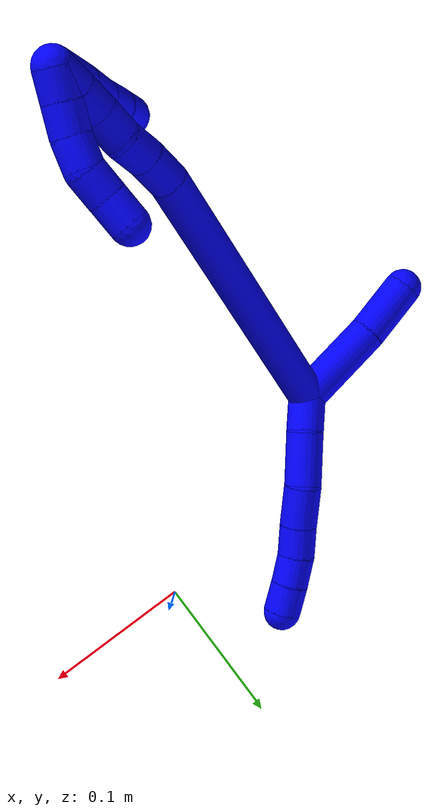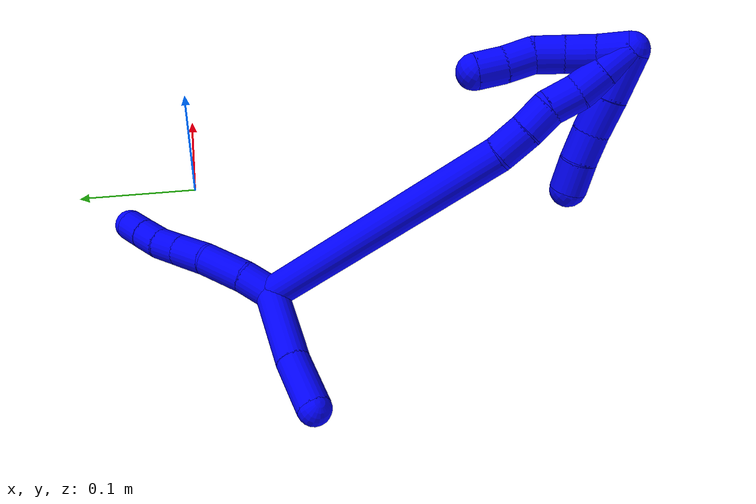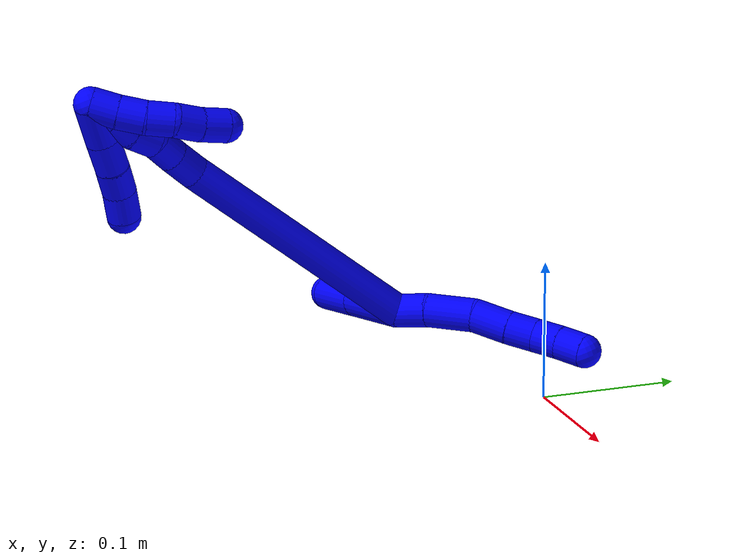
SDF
<sdf version="1.7">
 <world name="default">
  <plugin name="TubeGeneratorPlugin" filename="libtube_generator_plugin.so"/>
  <model name="photoneo_s_sensor">
   <static>1</static>
   <pose>0 0 2 1.57079 1.57079 3.14159</pose>
   <link name="link">
    <inertial><mass>0.1</mass></inertial>
    <sensor name="sensor" type="depth">
     <update_rate>30</update_rate>
     <camera>
      <horizontal_fov>1.22</horizontal_fov>
      <image><width>1920</width><height>1200</height><format>B8G8R8</format></image>
      <clip><near>0.1</near><far>4</far></clip>
      <depth_camera><output>points</output></depth_camera>
     </camera>
     <plugin name="camera_plugin" filename="libgazebo_ros_depth_camera.so">
      <baseline>0.2</baseline>
      <alwaysOn>1</alwaysOn>
      <updateRate>0.0</updateRate>
      <cameraName>camera_ir</cameraName>
      <imageTopicName>/camera/color/image_raw</imageTopicName>
      <cameraInfoTopicName>/camera/color/camera_info</cameraInfoTopicName>
      <depthImageTopicName>/camera/depth/image_raw</depthImageTopicName>
      <depthImageCameraInfoTopicName>/camera/depth/camera_info</depthImageCameraInfoTopicName>
      <pointCloudTopicName>/camera/depth/points</pointCloudTopicName>
      <frameName>fr_optical</frameName>
      <pointCloudCutoff>0.1</pointCloudCutoff>
      <pointCloudCutoffMax>2.0</pointCloudCutoffMax>
      <distortionK1>0</distortionK1>
      <distortionK2>0</distortionK2>
      <distortionK3>0</distortionK3>
      <distortionT1>0</distortionT1>
      <distortionT2>0</distortionT2>
      <CxPrime>0</CxPrime>
      <Cx>0</Cx>
      <Cy>0</Cy>
      <focalLength>0</focalLength>
      <hackBaseline>0</hackBaseline>
     </plugin>
    </sensor>
   </link>
  </model>
  <gravity>0 0 -9.8</gravity>
  <magnetic_field>6e-06 2.3e-05 -4.2e-05</magnetic_field>
  <atmosphere type="adiabatic"/>
  <physics name="default_physics" default="0" type="ode">
   <max_step_size>0.003</max_step_size>
   <real_time_factor>1</real_time_factor>
   <real_time_update_rate>1000</real_time_update_rate>
   <max_contacts>10000</max_contacts>
   <ode>
    <solver>
     <type>quick</type>
     <iters>100</iters>
     <sor>1.3</sor>
     <use_dynamic_moi_rescaling>0</use_dynamic_moi_rescaling>
    </solver>
    <constraints>
     <contact_max_correcting_vel>0</contact_max_correcting_vel>
     <contact_surface_layer>0.001</contact_surface_layer>
     <cfm>0</cfm>
     <erp>0.2</erp>
    </constraints>
   </ode>
  </physics>
  <scene><ambient>0.4 0.4 0.4 1</ambient><background>0.7 0.7 0.7 1</background><shadows>0</shadows></scene>
  <audio><device>default</device></audio>
  <spherical_coordinates>
   <surface_model>EARTH_WGS84</surface_model>
   <latitude_deg>0</latitude_deg>
   <longitude_deg>0</longitude_deg>
   <elevation>0</elevation>
   <heading_deg>0</heading_deg>
  </spherical_coordinates>
  <model name="bin">
   <static>1</static>
   <link name="bottom">
    <collision name="collision-bottom">
     <pose>0 0 -0.01 0 -0 0</pose>
     <geometry><box><size>0.8 0.6 0.02</size></box></geometry>
     <surface>
      <friction><ode><mu>100</mu><mu2>100</mu2></ode></friction>
      <contact><collide_bitmask>65535</collide_bitmask></contact>
     </surface>
    </collision>
   </link>
   <link name="west_wall">
    <collision name="collision-west_wall">
     <pose>-0.41 0 0.1 0 -0 0</pose>
     <geometry><box><size>0.02 0.6 0.2</size></box></geometry>
     <surface>
      <friction><ode><mu>100</mu><mu2>100</mu2></ode></friction>
      <contact><collide_bitmask>65535</collide_bitmask></contact>
     </surface>
    </collision>
   </link>
   <link name="east_wall">
    <collision name="collision-east_wall">
     <pose>0.41 0 0.1 0 -0 0</pose>
     <geometry><box><size>0.02 0.6 0.2</size></box></geometry>
     <surface>
      <friction><ode><mu>100</mu><mu2>100</mu2></ode></friction>
      <contact><collide_bitmask>65535</collide_bitmask></contact>
     </surface>
    </collision>
   </link>
   <link name="south_wall">
    <collision name="collision-south_wall">
     <pose>0 -0.31 0.1 0 -0 0</pose>
     <geometry><box><size>0.8 0.02 0.2</size></box></geometry>
     <surface>
      <friction><ode><mu>100</mu><mu2>100</mu2></ode></friction>
      <contact><collide_bitmask>65535</collide_bitmask></contact>
     </surface>
    </collision>
   </link>
   <link name="north_wall">
    <collision name="collision-north_wall">
     <pose>0 0.31 0.1 0 -0 0</pose>
     <geometry><box><size>0.8 0.02 0.2</size></box></geometry>
     <surface>
      <friction><ode><mu>100</mu><mu2>100</mu2></ode></friction>
      <contact><collide_bitmask>65535</collide_bitmask></contact>
     </surface>
    </collision>
   </link>
  </model>
  <model name="1">
   <static>0</static>
   <link name="1">
    <collision name="collision-cylinder-e_1_2_8">
     <pose>0.008653 0.008261 -0.003567 -1.97846 0.765827 -1.09941</pose>
     <geometry><cylinder><radius>0.0125</radius><length>0.024967</length></cylinder></geometry>
     <surface>
      <friction><ode><mu>1.16</mu><mu2>1.16</mu2><slip1>0</slip1><slip2>0</slip2></ode></friction>
      <contact><ode><kp>1e+06</kp><kd>1</kd><max_vel>0</max_vel><min_depth>0.001</min_depth></ode></contact>
     </surface>
    </collision>
    <visual name="visual-cylinder-e_1_2_8">
     <pose>0.008653 0.008261 -0.003567 -1.97846 0.765827 -1.09941</pose>
     <geometry><cylinder><radius>0.0125</radius><length>0.024967</length></cylinder></geometry>
     <material><ambient>0 0 1 1</ambient></material>
    </visual>
    <collision name="collision-cylinder-e_2_8_9">
     <pose>0.028758 0.028237 -0.014614 -2.13896 0.689197 -1.15969</pose>
     <geometry><cylinder><radius>0.0125</radius><length>0.036019</length></cylinder></geometry>
     <surface>
      <friction><ode><mu>1.16</mu><mu2>1.16</mu2><slip1>0</slip1><slip2>0</slip2></ode></friction>
      <contact><ode><kp>1e+06</kp><kd>1</kd><max_vel>0</max_vel><min_depth>0.001</min_depth></ode></contact>
     </surface>
    </collision>
    <visual name="visual-cylinder-e_2_8_9">
     <pose>0.028758 0.028237 -0.014614 -2.13896 0.689197 -1.15969</pose>
     <geometry><cylinder><radius>0.0125</radius><length>0.036019</length></cylinder></geometry>
     <material><ambient>0 0 1 1</ambient></material>
    </visual>
    <collision name="collision-cylinder-e_3_9_10">
     <pose>0.048503 0.047382 -0.030425 -2.41333 0.638895 -1.42958</pose>
     <geometry><cylinder><radius>0.0125</radius><length>0.027815</length></cylinder></geometry>
     <surface>
      <friction><ode><mu>1.16</mu><mu2>1.16</mu2><slip1>0</slip1><slip2>0</slip2></ode></friction>
      <contact><ode><kp>1e+06</kp><kd>1</kd><max_vel>0</max_vel><min_depth>0.001</min_depth></ode></contact>
     </surface>
    </collision>
    <visual name="visual-cylinder-e_3_9_10">
     <pose>0.048503 0.047382 -0.030425 -2.41333 0.638895 -1.42958</pose>
     <geometry><cylinder><radius>0.0125</radius><length>0.027815</length></cylinder></geometry>
     <material><ambient>0 0 1 1</ambient></material>
    </visual>
    <collision name="collision-cylinder-e_4_10_11">
     <pose>0.063044 0.060908 -0.044647 -2.33907 0.63516 -1.31829</pose>
     <geometry><cylinder><radius>0.0125</radius><length>0.02106</length></cylinder></geometry>
     <surface>
      <friction><ode><mu>1.16</mu><mu2>1.16</mu2><slip1>0</slip1><slip2>0</slip2></ode></friction>
      <contact><ode><kp>1e+06</kp><kd>1</kd><max_vel>0</max_vel><min_depth>0.001</min_depth></ode></contact>
     </surface>
    </collision>
    <visual name="visual-cylinder-e_4_10_11">
     <pose>0.063044 0.060908 -0.044647 -2.33907 0.63516 -1.31829</pose>
     <geometry><cylinder><radius>0.0125</radius><length>0.02106</length></cylinder></geometry>
     <material><ambient>0 0 1 1</ambient></material>
    </visual>
    <collision name="collision-cylinder-e_5_11_12">
     <pose>0.076422 0.071852 -0.055638 -2.38162 0.792005 -1.61651</pose>
     <geometry><cylinder><radius>0.0125</radius><length>0.020037</length></cylinder></geometry>
     <surface>
      <friction><ode><mu>1.16</mu><mu2>1.16</mu2><slip1>0</slip1><slip2>0</slip2></ode></friction>
      <contact><ode><kp>1e+06</kp><kd>1</kd><max_vel>0</max_vel><min_depth>0.001</min_depth></ode></contact>
     </surface>
    </collision>
    <visual name="visual-cylinder-e_5_11_12">
     <pose>0.076422 0.071852 -0.055638 -2.38162 0.792005 -1.61651</pose>
     <geometry><cylinder><radius>0.0125</radius><length>0.020037</length></cylinder></geometry>
     <material><ambient>0 0 1 1</ambient></material>
    </visual>
    <collision name="collision-cylinder-e_6_12_6">
     <pose>0.090808 0.081118 -0.066113 -2.45348 0.806332 -1.74421</pose>
     <geometry><cylinder><radius>0.0125</radius><length>0.020103</length></cylinder></geometry>
     <surface>
      <friction><ode><mu>1.16</mu><mu2>1.16</mu2><slip1>0</slip1><slip2>0</slip2></ode></friction>
      <contact><ode><kp>1e+06</kp><kd>1</kd><max_vel>0</max_vel><min_depth>0.001</min_depth></ode></contact>
     </surface>
    </collision>
    <visual name="visual-cylinder-e_6_12_6">
     <pose>0.090808 0.081118 -0.066113 -2.45348 0.806332 -1.74421</pose>
     <geometry><cylinder><radius>0.0125</radius><length>0.020103</length></cylinder></geometry>
     <material><ambient>0 0 1 1</ambient></material>
    </visual>
    <collision name="collision-cylinder-e_1_2_13">
     <pose>-0.029335 -0.001528 0.005949 0.251453 -1.36441 -0.204624</pose>
     <geometry><cylinder><radius>0.0125</radius><length>0.059941</length></cylinder></geometry>
     <surface>
      <friction><ode><mu>1.16</mu><mu2>1.16</mu2><slip1>0</slip1><slip2>0</slip2></ode></friction>
      <contact><ode><kp>1e+06</kp><kd>1</kd><max_vel>0</max_vel><min_depth>0.001</min_depth></ode></contact>
     </surface>
    </collision>
    <visual name="visual-cylinder-e_1_2_13">
     <pose>-0.029335 -0.001528 0.005949 0.251453 -1.36441 -0.204624</pose>
     <geometry><cylinder><radius>0.0125</radius><length>0.059941</length></cylinder></geometry>
     <material><ambient>0 0 1 1</ambient></material>
    </visual>
    <collision name="collision-cylinder-e_2_13_5">
     <pose>-0.077862 -0.005719 0.016968 0.48358 -1.2808 -0.363484</pose>
     <geometry><cylinder><radius>0.0125</radius><length>0.040059</length></cylinder></geometry>
     <surface>
      <friction><ode><mu>1.16</mu><mu2>1.16</mu2><slip1>0</slip1><slip2>0</slip2></ode></friction>
      <contact><ode><kp>1e+06</kp><kd>1</kd><max_vel>0</max_vel><min_depth>0.001</min_depth></ode></contact>
     </surface>
    </collision>
    <visual name="visual-cylinder-e_2_13_5">
     <pose>-0.077862 -0.005719 0.016968 0.48358 -1.2808 -0.363484</pose>
     <geometry><cylinder><radius>0.0125</radius><length>0.040059</length></cylinder></geometry>
     <material><ambient>0 0 1 1</ambient></material>
    </visual>
    <collision name="collision-cylinder-e_1_2_14">
     <pose>0.012621 -0.057796 0.077837 0.638701 0.129457 0.042861</pose>
     <geometry><cylinder><radius>0.0125</radius><length>0.195534</length></cylinder></geometry>
     <surface>
      <friction><ode><mu>1.16</mu><mu2>1.16</mu2><slip1>0</slip1><slip2>0</slip2></ode></friction>
      <contact><ode><kp>1e+06</kp><kd>1</kd><max_vel>0</max_vel><min_depth>0.001</min_depth></ode></contact>
     </surface>
    </collision>
    <visual name="visual-cylinder-e_1_2_14">
     <pose>0.012621 -0.057796 0.077837 0.638701 0.129457 0.042861</pose>
     <geometry><cylinder><radius>0.0125</radius><length>0.195534</length></cylinder></geometry>
     <material><ambient>0 0 1 1</ambient></material>
    </visual>
    <collision name="collision-cylinder-e_2_14_15">
     <pose>0.028803 -0.122176 0.164558 0.637778 0.311517 0.103597</pose>
     <geometry><cylinder><radius>0.0125</radius><length>0.023231</length></cylinder></geometry>
     <surface>
      <friction><ode><mu>1.16</mu><mu2>1.16</mu2><slip1>0</slip1><slip2>0</slip2></ode></friction>
      <contact><ode><kp>1e+06</kp><kd>1</kd><max_vel>0</max_vel><min_depth>0.001</min_depth></ode></contact>
     </surface>
    </collision>
    <visual name="visual-cylinder-e_2_14_15">
     <pose>0.028803 -0.122176 0.164558 0.637778 0.311517 0.103597</pose>
     <geometry><cylinder><radius>0.0125</radius><length>0.023231</length></cylinder></geometry>
     <material><ambient>0 0 1 1</ambient></material>
    </visual>
    <collision name="collision-cylinder-e_3_15_16">
     <pose>0.036498 -0.134247 0.180883 0.635392 0.420504 0.140121</pose>
     <geometry><cylinder><radius>0.0125</radius><length>0.020259</length></cylinder></geometry>
     <surface>
      <friction><ode><mu>1.16</mu><mu2>1.16</mu2><slip1>0</slip1><slip2>0</slip2></ode></friction>
      <contact><ode><kp>1e+06</kp><kd>1</kd><max_vel>0</max_vel><min_depth>0.001</min_depth></ode></contact>
     </surface>
    </collision>
    <visual name="visual-cylinder-e_3_15_16">
     <pose>0.036498 -0.134247 0.180883 0.635392 0.420504 0.140121</pose>
     <geometry><cylinder><radius>0.0125</radius><length>0.020259</length></cylinder></geometry>
     <material><ambient>0 0 1 1</ambient></material>
    </visual>
    <collision name="collision-cylinder-e_4_16_17">
     <pose>0.042627 -0.147457 0.194753 0.876607 0.19594 0.092069</pose>
     <geometry><cylinder><radius>0.0125</radius><length>0.020485</length></cylinder></geometry>
     <surface>
      <friction><ode><mu>1.16</mu><mu2>1.16</mu2><slip1>0</slip1><slip2>0</slip2></ode></friction>
      <contact><ode><kp>1e+06</kp><kd>1</kd><max_vel>0</max_vel><min_depth>0.001</min_depth></ode></contact>
     </surface>
    </collision>
    <visual name="visual-cylinder-e_4_16_17">
     <pose>0.042627 -0.147457 0.194753 0.876607 0.19594 0.092069</pose>
     <geometry><cylinder><radius>0.0125</radius><length>0.020485</length></cylinder></geometry>
     <material><ambient>0 0 1 1</ambient></material>
    </visual>
    <collision name="collision-cylinder-e_5_17_18">
     <pose>0.04751 -0.161297 0.208664 0.685425 0.290391 0.104249</pose>
     <geometry><cylinder><radius>0.0125</radius><length>0.020178</length></cylinder></geometry>
     <surface>
      <friction><ode><mu>1.16</mu><mu2>1.16</mu2><slip1>0</slip1><slip2>0</slip2></ode></friction>
      <contact><ode><kp>1e+06</kp><kd>1</kd><max_vel>0</max_vel><min_depth>0.001</min_depth></ode></contact>
     </surface>
    </collision>
    <visual name="visual-cylinder-e_5_17_18">
     <pose>0.04751 -0.161297 0.208664 0.685425 0.290391 0.104249</pose>
     <geometry><cylinder><radius>0.0125</radius><length>0.020178</length></cylinder></geometry>
     <material><ambient>0 0 1 1</ambient></material>
    </visual>
    <collision name="collision-cylinder-e_6_18_1">
     <pose>0.053485 -0.173469 0.223697 0.675793 0.308768 0.109254</pose>
     <geometry><cylinder><radius>0.0125</radius><length>0.020312</length></cylinder></geometry>
     <surface>
      <friction><ode><mu>1.16</mu><mu2>1.16</mu2><slip1>0</slip1><slip2>0</slip2></ode></friction>
      <contact><ode><kp>1e+06</kp><kd>1</kd><max_vel>0</max_vel><min_depth>0.001</min_depth></ode></contact>
     </surface>
    </collision>
    <visual name="visual-cylinder-e_6_18_1">
     <pose>0.053485 -0.173469 0.223697 0.675793 0.308768 0.109254</pose>
     <geometry><cylinder><radius>0.0125</radius><length>0.020312</length></cylinder></geometry>
     <material><ambient>0 0 1 1</ambient></material>
    </visual>
    <collision name="collision-cylinder-e_1_1_19">
     <pose>0.059757 -0.172323 0.225079 -2.27917 0.324211 -0.683051</pose>
     <geometry><cylinder><radius>0.0125</radius><length>0.02</length></cylinder></geometry>
     <surface>
      <friction><ode><mu>1.16</mu><mu2>1.16</mu2><slip1>0</slip1><slip2>0</slip2></ode></friction>
      <contact><ode><kp>1e+06</kp><kd>1</kd><max_vel>0</max_vel><min_depth>0.001</min_depth></ode></contact>
     </surface>
    </collision>
    <visual name="visual-cylinder-e_1_1_19">
     <pose>0.059757 -0.172323 0.225079 -2.27917 0.324211 -0.683051</pose>
     <geometry><cylinder><radius>0.0125</radius><length>0.02</length></cylinder></geometry>
     <material><ambient>0 0 1 1</ambient></material>
    </visual>
    <collision name="collision-cylinder-e_2_19_20">
     <pose>0.06644 -0.157534 0.21342 -2.19716 0.357295 -0.679646</pose>
     <geometry><cylinder><radius>0.0125</radius><length>0.02</length></cylinder></geometry>
     <surface>
      <friction><ode><mu>1.16</mu><mu2>1.16</mu2><slip1>0</slip1><slip2>0</slip2></ode></friction>
      <contact><ode><kp>1e+06</kp><kd>1</kd><max_vel>0</max_vel><min_depth>0.001</min_depth></ode></contact>
     </surface>
    </collision>
    <visual name="visual-cylinder-e_2_19_20">
     <pose>0.06644 -0.157534 0.21342 -2.19716 0.357295 -0.679646</pose>
     <geometry><cylinder><radius>0.0125</radius><length>0.02</length></cylinder></geometry>
     <material><ambient>0 0 1 1</ambient></material>
    </visual>
    <collision name="collision-cylinder-e_3_20_21">
     <pose>0.072519 -0.141416 0.203389 -2.05994 0.261133 -0.430534</pose>
     <geometry><cylinder><radius>0.0125</radius><length>0.02</length></cylinder></geometry>
     <surface>
      <friction><ode><mu>1.16</mu><mu2>1.16</mu2><slip1>0</slip1><slip2>0</slip2></ode></friction>
      <contact><ode><kp>1e+06</kp><kd>1</kd><max_vel>0</max_vel><min_depth>0.001</min_depth></ode></contact>
     </surface>
    </collision>
    <visual name="visual-cylinder-e_3_20_21">
     <pose>0.072519 -0.141416 0.203389 -2.05994 0.261133 -0.430534</pose>
     <geometry><cylinder><radius>0.0125</radius><length>0.02</length></cylinder></geometry>
     <material><ambient>0 0 1 1</ambient></material>
    </visual>
    <collision name="collision-cylinder-e_4_21_22">
     <pose>0.074267 -0.124312 0.193774 -2.10522 -0.083503 0.146281</pose>
     <geometry><cylinder><radius>0.0125</radius><length>0.02</length></cylinder></geometry>
     <surface>
      <friction><ode><mu>1.16</mu><mu2>1.16</mu2><slip1>0</slip1><slip2>0</slip2></ode></friction>
      <contact><ode><kp>1e+06</kp><kd>1</kd><max_vel>0</max_vel><min_depth>0.001</min_depth></ode></contact>
     </surface>
    </collision>
    <visual name="visual-cylinder-e_4_21_22">
     <pose>0.074267 -0.124312 0.193774 -2.10522 -0.083503 0.146281</pose>
     <geometry><cylinder><radius>0.0125</radius><length>0.02</length></cylinder></geometry>
     <material><ambient>0 0 1 1</ambient></material>
    </visual>
    <collision name="collision-cylinder-e_5_22_4">
     <pose>0.073017 -0.106582 0.184695 -1.98301 -0.041587 0.063562</pose>
     <geometry><cylinder><radius>0.0125</radius><length>0.02</length></cylinder></geometry>
     <surface>
      <friction><ode><mu>1.16</mu><mu2>1.16</mu2><slip1>0</slip1><slip2>0</slip2></ode></friction>
      <contact><ode><kp>1e+06</kp><kd>1</kd><max_vel>0</max_vel><min_depth>0.001</min_depth></ode></contact>
     </surface>
    </collision>
    <visual name="visual-cylinder-e_5_22_4">
     <pose>0.073017 -0.106582 0.184695 -1.98301 -0.041587 0.063562</pose>
     <geometry><cylinder><radius>0.0125</radius><length>0.02</length></cylinder></geometry>
     <material><ambient>0 0 1 1</ambient></material>
    </visual>
    <collision name="collision-cylinder-e_1_1_23">
     <pose>0.048445 -0.177732 0.217599 -3.01126 -0.533375 2.67263</pose>
     <geometry><cylinder><radius>0.0125</radius><length>0.031967</length></cylinder></geometry>
     <surface>
      <friction><ode><mu>1.16</mu><mu2>1.16</mu2><slip1>0</slip1><slip2>0</slip2></ode></friction>
      <contact><ode><kp>1e+06</kp><kd>1</kd><max_vel>0</max_vel><min_depth>0.001</min_depth></ode></contact>
     </surface>
    </collision>
    <visual name="visual-cylinder-e_1_1_23">
     <pose>0.048445 -0.177732 0.217599 -3.01126 -0.533375 2.67263</pose>
     <geometry><cylinder><radius>0.0125</radius><length>0.031967</length></cylinder></geometry>
     <material><ambient>0 0 1 1</ambient></material>
    </visual>
    <collision name="collision-cylinder-e_2_23_24">
     <pose>0.034466 -0.174525 0.193059 -3.0121 -0.489473 2.63356</pose>
     <geometry><cylinder><radius>0.0125</radius><length>0.024894</length></cylinder></geometry>
     <surface>
      <friction><ode><mu>1.16</mu><mu2>1.16</mu2><slip1>0</slip1><slip2>0</slip2></ode></friction>
      <contact><ode><kp>1e+06</kp><kd>1</kd><max_vel>0</max_vel><min_depth>0.001</min_depth></ode></contact>
     </surface>
    </collision>
    <visual name="visual-cylinder-e_2_23_24">
     <pose>0.034466 -0.174525 0.193059 -3.0121 -0.489473 2.63356</pose>
     <geometry><cylinder><radius>0.0125</radius><length>0.024894</length></cylinder></geometry>
     <material><ambient>0 0 1 1</ambient></material>
    </visual>
    <collision name="collision-cylinder-e_3_24_25">
     <pose>0.023007 -0.172064 0.173256 -3.02509 -0.558579 2.74037</pose>
     <geometry><cylinder><radius>0.0125</radius><length>0.021158</length></cylinder></geometry>
     <surface>
      <friction><ode><mu>1.16</mu><mu2>1.16</mu2><slip1>0</slip1><slip2>0</slip2></ode></friction>
      <contact><ode><kp>1e+06</kp><kd>1</kd><max_vel>0</max_vel><min_depth>0.001</min_depth></ode></contact>
     </surface>
    </collision>
    <visual name="visual-cylinder-e_3_24_25">
     <pose>0.023007 -0.172064 0.173256 -3.02509 -0.558579 2.74037</pose>
     <geometry><cylinder><radius>0.0125</radius><length>0.021158</length></cylinder></geometry>
     <material><ambient>0 0 1 1</ambient></material>
    </visual>
    <collision name="collision-cylinder-e_4_25_3">
     <pose>0.01192 -0.171136 0.15482 3.12948 -0.522081 -3.09627</pose>
     <geometry><cylinder><radius>0.0125</radius><length>0.021981</length></cylinder></geometry>
     <surface>
      <friction><ode><mu>1.16</mu><mu2>1.16</mu2><slip1>0</slip1><slip2>0</slip2></ode></friction>
      <contact><ode><kp>1e+06</kp><kd>1</kd><max_vel>0</max_vel><min_depth>0.001</min_depth></ode></contact>
     </surface>
    </collision>
    <visual name="visual-cylinder-e_4_25_3">
     <pose>0.01192 -0.171136 0.15482 3.12948 -0.522081 -3.09627</pose>
     <geometry><cylinder><radius>0.0125</radius><length>0.021981</length></cylinder></geometry>
     <material><ambient>0 0 1 1</ambient></material>
    </visual>
    <collision name="collision-sphere-3">
     <pose>0.006439 -0.171252 0.145294 0 -0 0</pose>
     <geometry><sphere><radius>0.0125</radius></sphere></geometry>
     <surface>
      <friction><ode><mu>1.16</mu><mu2>1.16</mu2><slip1>0</slip1><slip2>0</slip2></ode></friction>
      <contact><ode><kp>1e+06</kp><kd>1</kd><max_vel>0</max_vel><min_depth>0.001</min_depth></ode></contact>
     </surface>
    </collision>
    <visual name="visual-sphere-3">
     <pose>0.006439 -0.171252 0.145294 0 -0 0</pose>
     <geometry><sphere><radius>0.0125</radius></sphere></geometry>
     <material><ambient>0 0 1 1</ambient></material>
    </visual>
    <collision name="collision-sphere-25">
     <pose>0.017401 -0.171021 0.164345 0 -0 0</pose>
     <geometry><sphere><radius>0.0125</radius></sphere></geometry>
     <surface>
      <friction><ode><mu>1.16</mu><mu2>1.16</mu2><slip1>0</slip1><slip2>0</slip2></ode></friction>
      <contact><ode><kp>1e+06</kp><kd>1</kd><max_vel>0</max_vel><min_depth>0.001</min_depth></ode></contact>
     </surface>
    </collision>
    <visual name="visual-sphere-25">
     <pose>0.017401 -0.171021 0.164345 0 -0 0</pose>
     <geometry><sphere><radius>0.0125</radius></sphere></geometry>
     <material><ambient>0 0 1 1</ambient></material>
    </visual>
    <collision name="collision-sphere-24">
     <pose>0.028614 -0.173107 0.182166 0 -0 0</pose>
     <geometry><sphere><radius>0.0125</radius></sphere></geometry>
     <surface>
      <friction><ode><mu>1.16</mu><mu2>1.16</mu2><slip1>0</slip1><slip2>0</slip2></ode></friction>
      <contact><ode><kp>1e+06</kp><kd>1</kd><max_vel>0</max_vel><min_depth>0.001</min_depth></ode></contact>
     </surface>
    </collision>
    <visual name="visual-sphere-24">
     <pose>0.028614 -0.173107 0.182166 0 -0 0</pose>
     <geometry><sphere><radius>0.0125</radius></sphere></geometry>
     <material><ambient>0 0 1 1</ambient></material>
    </visual>
    <collision name="collision-sphere-23">
     <pose>0.040318 -0.175944 0.203953 0 -0 0</pose>
     <geometry><sphere><radius>0.0125</radius></sphere></geometry>
     <surface>
      <friction><ode><mu>1.16</mu><mu2>1.16</mu2><slip1>0</slip1><slip2>0</slip2></ode></friction>
      <contact><ode><kp>1e+06</kp><kd>1</kd><max_vel>0</max_vel><min_depth>0.001</min_depth></ode></contact>
     </surface>
    </collision>
    <visual name="visual-sphere-23">
     <pose>0.040318 -0.175944 0.203953 0 -0 0</pose>
     <geometry><sphere><radius>0.0125</radius></sphere></geometry>
     <material><ambient>0 0 1 1</ambient></material>
    </visual>
    <collision name="collision-sphere-4">
     <pose>0.072601 -0.097428 0.180692 0 -0 0</pose>
     <geometry><sphere><radius>0.0125</radius></sphere></geometry>
     <surface>
      <friction><ode><mu>1.16</mu><mu2>1.16</mu2><slip1>0</slip1><slip2>0</slip2></ode></friction>
      <contact><ode><kp>1e+06</kp><kd>1</kd><max_vel>0</max_vel><min_depth>0.001</min_depth></ode></contact>
     </surface>
    </collision>
    <visual name="visual-sphere-4">
     <pose>0.072601 -0.097428 0.180692 0 -0 0</pose>
     <geometry><sphere><radius>0.0125</radius></sphere></geometry>
     <material><ambient>0 0 1 1</ambient></material>
    </visual>
    <collision name="collision-sphere-22">
     <pose>0.073433 -0.115737 0.188698 0 -0 0</pose>
     <geometry><sphere><radius>0.0125</radius></sphere></geometry>
     <surface>
      <friction><ode><mu>1.16</mu><mu2>1.16</mu2><slip1>0</slip1><slip2>0</slip2></ode></friction>
      <contact><ode><kp>1e+06</kp><kd>1</kd><max_vel>0</max_vel><min_depth>0.001</min_depth></ode></contact>
     </surface>
    </collision>
    <visual name="visual-sphere-22">
     <pose>0.073433 -0.115737 0.188698 0 -0 0</pose>
     <geometry><sphere><radius>0.0125</radius></sphere></geometry>
     <material><ambient>0 0 1 1</ambient></material>
    </visual>
    <collision name="collision-sphere-21">
     <pose>0.075101 -0.132888 0.19885 0 -0 0</pose>
     <geometry><sphere><radius>0.0125</radius></sphere></geometry>
     <surface>
      <friction><ode><mu>1.16</mu><mu2>1.16</mu2><slip1>0</slip1><slip2>0</slip2></ode></friction>
      <contact><ode><kp>1e+06</kp><kd>1</kd><max_vel>0</max_vel><min_depth>0.001</min_depth></ode></contact>
     </surface>
    </collision>
    <visual name="visual-sphere-21">
     <pose>0.075101 -0.132888 0.19885 0 -0 0</pose>
     <geometry><sphere><radius>0.0125</radius></sphere></geometry>
     <material><ambient>0 0 1 1</ambient></material>
    </visual>
    <collision name="collision-sphere-20">
     <pose>0.069938 -0.149944 0.207928 0 -0 0</pose>
     <geometry><sphere><radius>0.0125</radius></sphere></geometry>
     <surface>
      <friction><ode><mu>1.16</mu><mu2>1.16</mu2><slip1>0</slip1><slip2>0</slip2></ode></friction>
      <contact><ode><kp>1e+06</kp><kd>1</kd><max_vel>0</max_vel><min_depth>0.001</min_depth></ode></contact>
     </surface>
    </collision>
    <visual name="visual-sphere-20">
     <pose>0.069938 -0.149944 0.207928 0 -0 0</pose>
     <geometry><sphere><radius>0.0125</radius></sphere></geometry>
     <material><ambient>0 0 1 1</ambient></material>
    </visual>
    <collision name="collision-sphere-12">
     <pose>0.083553 0.0767 -0.060739 0 -0 0</pose>
     <geometry><sphere><radius>0.0125</radius></sphere></geometry>
     <surface>
      <friction><ode><mu>1.16</mu><mu2>1.16</mu2><slip1>0</slip1><slip2>0</slip2></ode></friction>
      <contact><ode><kp>1e+06</kp><kd>1</kd><max_vel>0</max_vel><min_depth>0.001</min_depth></ode></contact>
     </surface>
    </collision>
    <visual name="visual-sphere-12">
     <pose>0.083553 0.0767 -0.060739 0 -0 0</pose>
     <geometry><sphere><radius>0.0125</radius></sphere></geometry>
     <material><ambient>0 0 1 1</ambient></material>
    </visual>
    <collision name="collision-sphere-11">
     <pose>0.069291 0.067004 -0.050537 0 -0 0</pose>
     <geometry><sphere><radius>0.0125</radius></sphere></geometry>
     <surface>
      <friction><ode><mu>1.16</mu><mu2>1.16</mu2><slip1>0</slip1><slip2>0</slip2></ode></friction>
      <contact><ode><kp>1e+06</kp><kd>1</kd><max_vel>0</max_vel><min_depth>0.001</min_depth></ode></contact>
     </surface>
    </collision>
    <visual name="visual-sphere-11">
     <pose>0.069291 0.067004 -0.050537 0 -0 0</pose>
     <geometry><sphere><radius>0.0125</radius></sphere></geometry>
     <material><ambient>0 0 1 1</ambient></material>
    </visual>
    <collision name="collision-sphere-10">
     <pose>0.056796 0.054813 -0.038757 0 -0 0</pose>
     <geometry><sphere><radius>0.0125</radius></sphere></geometry>
     <surface>
      <friction><ode><mu>1.16</mu><mu2>1.16</mu2><slip1>0</slip1><slip2>0</slip2></ode></friction>
      <contact><ode><kp>1e+06</kp><kd>1</kd><max_vel>0</max_vel><min_depth>0.001</min_depth></ode></contact>
     </surface>
    </collision>
    <visual name="visual-sphere-10">
     <pose>0.056796 0.054813 -0.038757 0 -0 0</pose>
     <geometry><sphere><radius>0.0125</radius></sphere></geometry>
     <material><ambient>0 0 1 1</ambient></material>
    </visual>
    <collision name="collision-sphere-9">
     <pose>0.04021 0.039952 -0.022092 0 -0 0</pose>
     <geometry><sphere><radius>0.0125</radius></sphere></geometry>
     <surface>
      <friction><ode><mu>1.16</mu><mu2>1.16</mu2><slip1>0</slip1><slip2>0</slip2></ode></friction>
      <contact><ode><kp>1e+06</kp><kd>1</kd><max_vel>0</max_vel><min_depth>0.001</min_depth></ode></contact>
     </surface>
    </collision>
    <visual name="visual-sphere-9">
     <pose>0.04021 0.039952 -0.022092 0 -0 0</pose>
     <geometry><sphere><radius>0.0125</radius></sphere></geometry>
     <material><ambient>0 0 1 1</ambient></material>
    </visual>
    <collision name="collision-sphere-2">
     <geometry><sphere><radius>0.0125</radius></sphere></geometry>
     <surface>
      <friction><ode><mu>1.16</mu><mu2>1.16</mu2><slip1>0</slip1><slip2>0</slip2></ode></friction>
      <contact><ode><kp>1e+06</kp><kd>1</kd><max_vel>0</max_vel><min_depth>0.001</min_depth></ode></contact>
     </surface>
    </collision>
    <visual name="visual-sphere-2">
     <geometry><sphere><radius>0.0125</radius></sphere></geometry>
     <material><ambient>0 0 1 1</ambient></material>
    </visual>
    <collision name="collision-sphere-19">
     <pose>0.062943 -0.165124 0.218912 0 -0 0</pose>
     <geometry><sphere><radius>0.0125</radius></sphere></geometry>
     <surface>
      <friction><ode><mu>1.16</mu><mu2>1.16</mu2><slip1>0</slip1><slip2>0</slip2></ode></friction>
      <contact><ode><kp>1e+06</kp><kd>1</kd><max_vel>0</max_vel><min_depth>0.001</min_depth></ode></contact>
     </surface>
    </collision>
    <visual name="visual-sphere-19">
     <pose>0.062943 -0.165124 0.218912 0 -0 0</pose>
     <geometry><sphere><radius>0.0125</radius></sphere></geometry>
     <material><ambient>0 0 1 1</ambient></material>
    </visual>
    <collision name="collision-sphere-8">
     <pose>0.017305 0.016521 -0.007135 0 -0 0</pose>
     <geometry><sphere><radius>0.0125</radius></sphere></geometry>
     <surface>
      <friction><ode><mu>1.16</mu><mu2>1.16</mu2><slip1>0</slip1><slip2>0</slip2></ode></friction>
      <contact><ode><kp>1e+06</kp><kd>1</kd><max_vel>0</max_vel><min_depth>0.001</min_depth></ode></contact>
     </surface>
    </collision>
    <visual name="visual-sphere-8">
     <pose>0.017305 0.016521 -0.007135 0 -0 0</pose>
     <geometry><sphere><radius>0.0125</radius></sphere></geometry>
     <material><ambient>0 0 1 1</ambient></material>
    </visual>
    <collision name="collision-sphere-6">
     <pose>0.098062 0.085536 -0.071487 0 -0 0</pose>
     <geometry><sphere><radius>0.0125</radius></sphere></geometry>
     <surface>
      <friction><ode><mu>1.16</mu><mu2>1.16</mu2><slip1>0</slip1><slip2>0</slip2></ode></friction>
      <contact><ode><kp>1e+06</kp><kd>1</kd><max_vel>0</max_vel><min_depth>0.001</min_depth></ode></contact>
     </surface>
    </collision>
    <visual name="visual-sphere-6">
     <pose>0.098062 0.085536 -0.071487 0 -0 0</pose>
     <geometry><sphere><radius>0.0125</radius></sphere></geometry>
     <material><ambient>0 0 1 1</ambient></material>
    </visual>
    <collision name="collision-sphere-13">
     <pose>-0.058669 -0.003056 0.011897 0 -0 0</pose>
     <geometry><sphere><radius>0.0125</radius></sphere></geometry>
     <surface>
      <friction><ode><mu>1.16</mu><mu2>1.16</mu2><slip1>0</slip1><slip2>0</slip2></ode></friction>
      <contact><ode><kp>1e+06</kp><kd>1</kd><max_vel>0</max_vel><min_depth>0.001</min_depth></ode></contact>
     </surface>
    </collision>
    <visual name="visual-sphere-13">
     <pose>-0.058669 -0.003056 0.011897 0 -0 0</pose>
     <geometry><sphere><radius>0.0125</radius></sphere></geometry>
     <material><ambient>0 0 1 1</ambient></material>
    </visual>
    <collision name="collision-sphere-5">
     <pose>-0.097055 -0.008382 0.022038 0 -0 0</pose>
     <geometry><sphere><radius>0.0125</radius></sphere></geometry>
     <surface>
      <friction><ode><mu>1.16</mu><mu2>1.16</mu2><slip1>0</slip1><slip2>0</slip2></ode></friction>
      <contact><ode><kp>1e+06</kp><kd>1</kd><max_vel>0</max_vel><min_depth>0.001</min_depth></ode></contact>
     </surface>
    </collision>
    <visual name="visual-sphere-5">
     <pose>-0.097055 -0.008382 0.022038 0 -0 0</pose>
     <geometry><sphere><radius>0.0125</radius></sphere></geometry>
     <material><ambient>0 0 1 1</ambient></material>
    </visual>
    <collision name="collision-sphere-14">
     <pose>0.025243 -0.115593 0.155675 0 -0 0</pose>
     <geometry><sphere><radius>0.0125</radius></sphere></geometry>
     <surface>
      <friction><ode><mu>1.16</mu><mu2>1.16</mu2><slip1>0</slip1><slip2>0</slip2></ode></friction>
      <contact><ode><kp>1e+06</kp><kd>1</kd><max_vel>0</max_vel><min_depth>0.001</min_depth></ode></contact>
     </surface>
    </collision>
    <visual name="visual-sphere-14">
     <pose>0.025243 -0.115593 0.155675 0 -0 0</pose>
     <geometry><sphere><radius>0.0125</radius></sphere></geometry>
     <material><ambient>0 0 1 1</ambient></material>
    </visual>
    <collision name="collision-sphere-15">
     <pose>0.032363 -0.128759 0.173441 0 -0 0</pose>
     <geometry><sphere><radius>0.0125</radius></sphere></geometry>
     <surface>
      <friction><ode><mu>1.16</mu><mu2>1.16</mu2><slip1>0</slip1><slip2>0</slip2></ode></friction>
      <contact><ode><kp>1e+06</kp><kd>1</kd><max_vel>0</max_vel><min_depth>0.001</min_depth></ode></contact>
     </surface>
    </collision>
    <visual name="visual-sphere-15">
     <pose>0.032363 -0.128759 0.173441 0 -0 0</pose>
     <geometry><sphere><radius>0.0125</radius></sphere></geometry>
     <material><ambient>0 0 1 1</ambient></material>
    </visual>
    <collision name="collision-sphere-16">
     <pose>0.040633 -0.139735 0.188326 0 -0 0</pose>
     <geometry><sphere><radius>0.0125</radius></sphere></geometry>
     <surface>
      <friction><ode><mu>1.16</mu><mu2>1.16</mu2><slip1>0</slip1><slip2>0</slip2></ode></friction>
      <contact><ode><kp>1e+06</kp><kd>1</kd><max_vel>0</max_vel><min_depth>0.001</min_depth></ode></contact>
     </surface>
    </collision>
    <visual name="visual-sphere-16">
     <pose>0.040633 -0.139735 0.188326 0 -0 0</pose>
     <geometry><sphere><radius>0.0125</radius></sphere></geometry>
     <material><ambient>0 0 1 1</ambient></material>
    </visual>
    <collision name="collision-sphere-17">
     <pose>0.044621 -0.155178 0.201181 0 -0 0</pose>
     <geometry><sphere><radius>0.0125</radius></sphere></geometry>
     <surface>
      <friction><ode><mu>1.16</mu><mu2>1.16</mu2><slip1>0</slip1><slip2>0</slip2></ode></friction>
      <contact><ode><kp>1e+06</kp><kd>1</kd><max_vel>0</max_vel><min_depth>0.001</min_depth></ode></contact>
     </surface>
    </collision>
    <visual name="visual-sphere-17">
     <pose>0.044621 -0.155178 0.201181 0 -0 0</pose>
     <geometry><sphere><radius>0.0125</radius></sphere></geometry>
     <material><ambient>0 0 1 1</ambient></material>
    </visual>
    <collision name="collision-sphere-18">
     <pose>0.050399 -0.167416 0.216148 0 -0 0</pose>
     <geometry><sphere><radius>0.0125</radius></sphere></geometry>
     <surface>
      <friction><ode><mu>1.16</mu><mu2>1.16</mu2><slip1>0</slip1><slip2>0</slip2></ode></friction>
      <contact><ode><kp>1e+06</kp><kd>1</kd><max_vel>0</max_vel><min_depth>0.001</min_depth></ode></contact>
     </surface>
    </collision>
    <visual name="visual-sphere-18">
     <pose>0.050399 -0.167416 0.216148 0 -0 0</pose>
     <geometry><sphere><radius>0.0125</radius></sphere></geometry>
     <material><ambient>0 0 1 1</ambient></material>
    </visual>
    <collision name="collision-sphere-1">
     <pose>0.056572 -0.179521 0.231246 0 -0 0</pose>
     <geometry><sphere><radius>0.0125</radius></sphere></geometry>
     <surface>
      <friction><ode><mu>1.16</mu><mu2>1.16</mu2><slip1>0</slip1><slip2>0</slip2></ode></friction>
      <contact><ode><kp>1e+06</kp><kd>1</kd><max_vel>0</max_vel><min_depth>0.001</min_depth></ode></contact>
     </surface>
    </collision>
    <visual name="visual-sphere-1">
     <pose>0.056572 -0.179521 0.231246 0 -0 0</pose>
     <geometry><sphere><radius>0.0125</radius></sphere></geometry>
     <material><ambient>0 0 1 1</ambient></material>
    </visual>
    <inertial>
     <pose>0.025704 -0.068742 0.094506 0 -0 0</pose>
     <mass>0.75</mass>
     <inertia>
      <ixx>0.000658</ixx>
      <ixy>0</ixy>
      <ixz>0</ixz>
      <iyy>0.000568</iyy>
      <iyz>0</iyz>
      <izz>0.000304</izz>
     </inertia>
    </inertial>
   </link>
   <pose>-0.153081 -0.054492 0.024333 0.273539 -0.32301 0.060082</pose>
  </model>
 </world>
</sdf>
